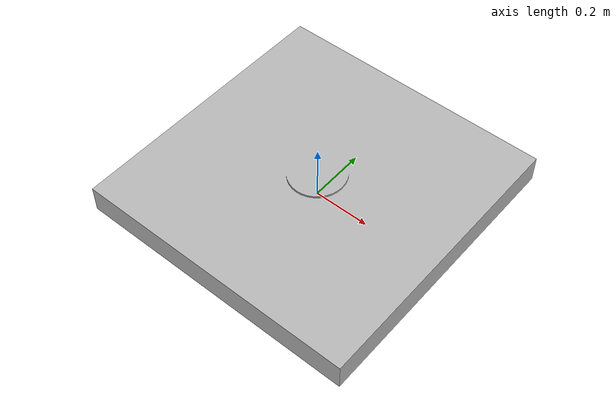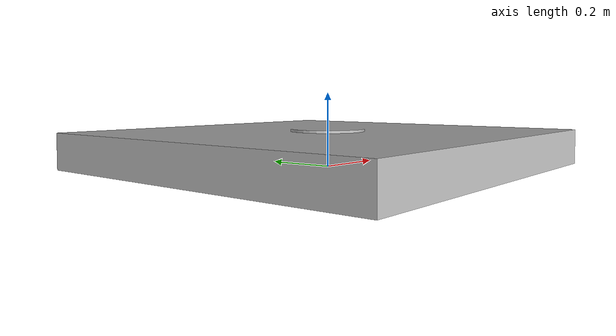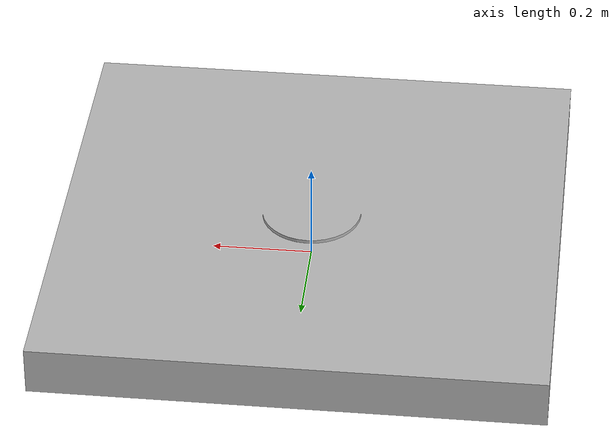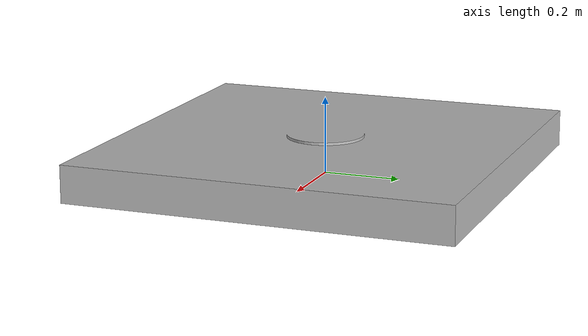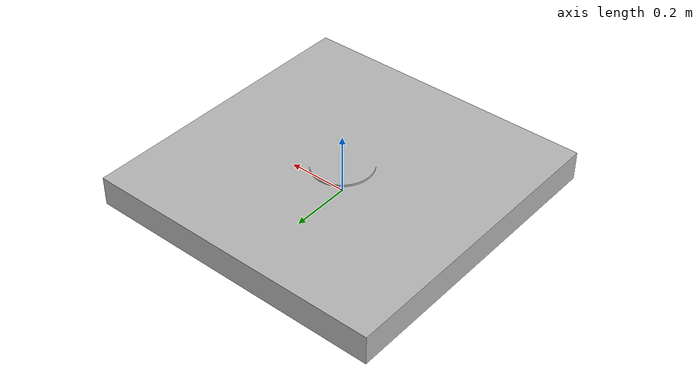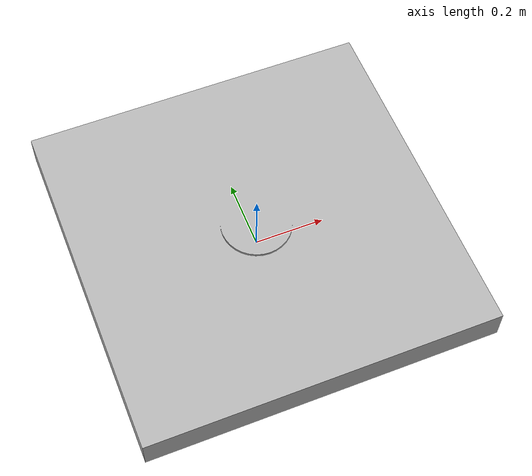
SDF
<?xml version="1.0"?>
<sdf version="1.5">
    <model name="platform">
        <static>true</static>
        <link name="link">
            <collision name="collision">
                <pose>0 0 0.05 0 0 0</pose>
                <geometry>
                    <box>
                        <size>1 1 0.1</size>
                    </box>
                </geometry>
            </collision>
            <visual name="visual">
              <pose>0 0 0 0 0 0</pose>
              <geometry>
              <mesh>
                 <uri>model://platform/meshes/platfotm_tr.dae</uri>
              </mesh>
              </geometry>

              <material>
                  <script>
                      <uri>model://platform/materials/scripts</uri>
                      <uri>model://platform/materials/textures</uri>
                      <name>platformMat/Diffuse</name>
                  </script>
              </material>
             </visual>
        </link>
    </model>
</sdf>
